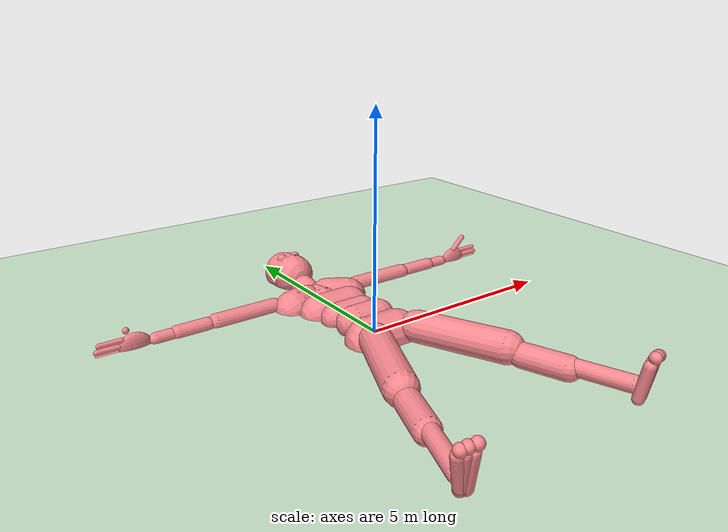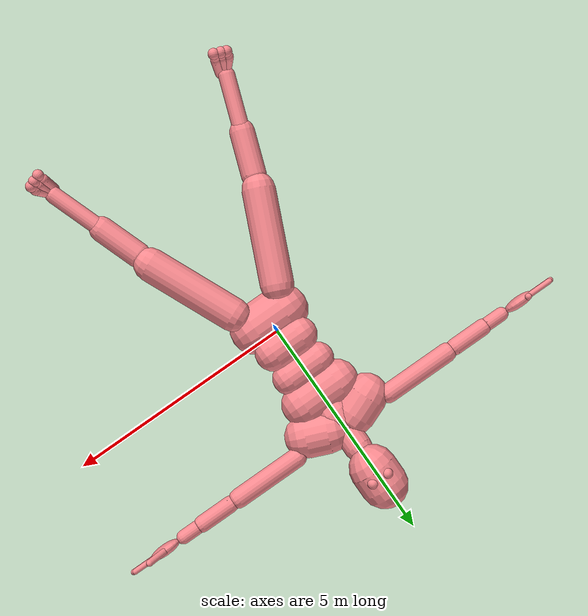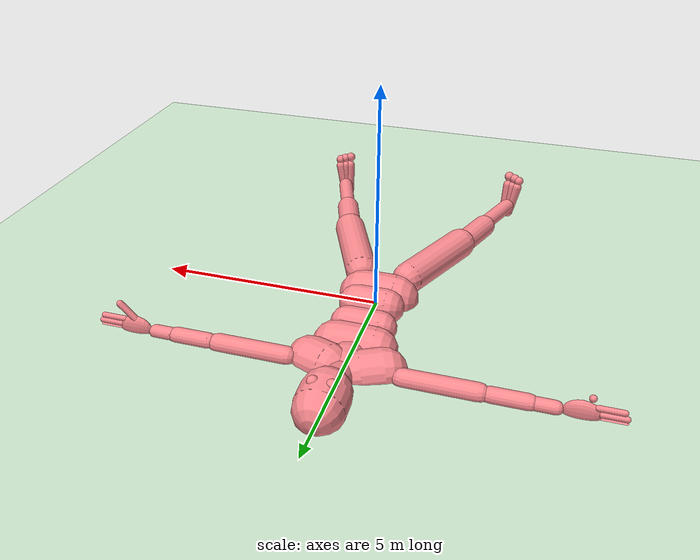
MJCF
<mujoco model="humanoid">
  <include file="./common/materials.xml" />
  <compiler angle="degree" inertiafromgeom="true" coordinate="local" />
  <statistic extent="3" center="0 0 1" />
  <size nuser_body="3" />
  <option timestep="0.00222222222" />

  <default class="main">
    <joint limited="true" solimplimit="0 0.99 0.01" />
    <geom contype="7" conaffinity="7" condim="1" margin="0.001" material="self" rgba="0.98 0.54 0.56 1" />
  </default>

  <worldbody>
    <geom condim="3" friction="1. .1 .1" material="grid_new" name="floor" pos="0.0 0.0 0.0" rgba=".8 .9 .8 1" size="704.3553448438121 704.3553448438121 1.4087106896876243" type="plane" />
    <light name="tracking_light" pos="0 0 7" dir="0 0 -1" mode="trackcom" />
    <camera name="back" pos="0 3 2.4" xyaxes="-1 0 0 0 -1 2" mode="trackcom" />
    <camera name="side" pos="-3 0 2.4" xyaxes="0 -1 0 1 0 2" mode="trackcom" />
    <body name="root" pos="0.0 0.0 0.0" euler="0 0 0">
      <joint armature="0.0" limited="false" name="root" pos="0.0 -0.0 0.0" stiffness="0" type="free" />

      <geom type="capsule" name="root_geom" size="0.5416935339494245 0.3611290226329497" pos="0.0 -0.3009408521941248 0.0" quat="1 0 -1 0" mass="8.8725" />
      <body name="lhipjoint" pos="0.0 0.0 0.0">
        <geom type="capsule" name="lhipjoint" size="0.04815053635105997 0.13241397496541488" pos="0.3069596692380072 -0.2768655840185948 0.1504704260970624" quat="0.5708 -0.566602 -0.594264 0" />
        <body name="lfemur" pos="0.6139193384760144 -0.5537311680371896 0.3009408521941248" quat="1 0 0 0.17365">
          <joint name="lfemur_z" axis="0 0 1" range="-60 70" type="hinge" pos="0.0 0.0 0.0" />
          <joint name="lfemur_y" axis="0 1 0" range="-70 70" type="hinge" pos="0.0 0.0 0.0" />
          <joint name="lfemur_x" axis="1 0 0" range="-160 20" type="hinge" pos="0.0 0.0 0.0" />
          <geom type="capsule" name="lfemur" size="0.3611290226329497 1.0231988974600243" pos="-0.060188170438824955 -1.2186479433260204 0.0" quat="0.7 -0.7 -0.1228 -0.07" mass="10.8525" />
          <body name="ltibia" pos="0.0 -2.437289867834997 0.0">
            <joint name="ltibia_x" axis="1 0 0" range="1   170" type="hinge" pos="0.0 0.0 0.0" />
            <geom type="capsule" name="ltibia" size="0.18056451131647486 1.0988036658750497" pos="0.0 -1.2208929620833886 0.0" quat="0.7 -0.7 -0.1228 -0.1228" mass="3.4274999999999998" />
            <geom type="capsule" name="lcalf" size="0.27084676697471227 0.48150536351059964" pos="0.0 -0.6018817043882496 -0.060188170438824955" quat="0.7 -0.7 -0.1228 -0.1228" />
            <body name="lfoot" pos="0.0 -2.4417919429838215 0.0" quat="0.707107 -0.707107 0 0">

              <joint name="lfoot_z" axis="0 0 1" range="-70 20" type="hinge" pos="0.0 0.0 0.0" />
              <joint name="lfoot_y" pos="0.0 0.0 0.0" axis="0 -1 0" range="-45 45" />
              <joint name="lfoot_x" axis="1 0 0" range="-45    90" type="hinge" pos="0.0 0.0 0.0" />
              <geom type="capsule" name="lfoot0" size="0.12037634087764991 0.3611290226329497" pos="-0.12037634087764991 -0.1384327920092974 -0.060188170438824955" euler="100 -2 0" mass="0.9974999999999999" />
              <geom type="capsule" name="lfoot1" size="0.12037634087764991 0.3611290226329497" pos="0.0 -0.1384327920092974 -0.060188170438824955" euler="100 0 0" />
              <geom type="capsule" name="lfoot2" size="0.12037634087764991 0.3611290226329497" pos="0.060188170438824955 -0.1384327920092974 -0.060188170438824955" euler="100 10 0" />
              <body name="ltoes" pos="0.0 -0.6402336065918688 -0.13708216946465016">

                <geom name="ltoes0" type="sphere" size="0.12037634087764991" pos="-0.1504704260970624 -0.060188170438824955 -0.060188170438824955" />
                <geom name="ltoes1" type="sphere" size="0.12037634087764991" pos="0.0 -0.030094085219412477 -0.060188170438824955" />
                <geom name="ltoes2" type="sphere" size="0.12037634087764991" pos="0.12037634087764991 0.006018817043882496 -0.060188170438824955" />

              </body>
            </body>
          </body>
        </body>
      </body>
      <body name="rhipjoint" pos="0.0 0.0 0.0">
        <geom type="capsule" name="rhipjoint" size="0.04815053635105997 0.13241397496541488" pos="-0.3069596692380072 -0.2768655840185948 0.1504704260970624" quat="0.574856 -0.547594 0.608014 0" />
        <body name="rfemur" pos="-0.6139193384760144 -0.5537311680371896 0.3009408521941248" quat="1 0 0 -0.17365">
          <joint name="rfemur_z" axis="0 0 1" range="-70 60" type="hinge" pos="0.0 0.0 0.0" />
          <joint name="rfemur_y" axis="0 1 0" range="-70 70" type="hinge" pos="0.0 0.0 0.0" />
          <joint name="rfemur_x" axis="1 0 0" range="-160 20" type="hinge" pos="0.0 0.0 0.0" />
          <geom type="capsule" name="rfemur" size="0.3611290226329497 1.0231988974600243" pos="0.060188170438824955 -1.2186479433260204 0.0" quat="0.7 -0.7 0.1228 0.07" mass="10.8525" />
          <body name="rtibia" pos="0.0 -2.437289867834997 0.0">
            <joint name="rtibia_x" axis="1 0 0" range="1   170" type="hinge" pos="0.0 0.0 0.0" />
            <geom type="capsule" name="rtibia" size="0.18056451131647486 1.0988036658750497" pos="0.0 -1.2208929620833886 0.0" quat="0.7 -0.7 0.1228 0.1228" mass="3.4274999999999998" />
            <geom type="capsule" name="rcalf" size="0.27084676697471227 0.48150536351059964" pos="0.0 -0.6018817043882496 -0.060188170438824955" quat="0.7 -0.7 -0.1228 -0.1228" />
            <body name="rfoot" pos="0.0 -2.4417919429838215 0.0" quat="0.707107 -0.707107 0 0">

              <joint name="rfoot_z" axis="0 0 1" range="-20 70" type="hinge" pos="0.0 0.0 0.0" />
              <joint name="rfoot_y" pos="0.0 0.0 0.0" axis="0 -1 0" range="-45 45" />
              <joint name="rfoot_x" axis="1 0 0" range="-45    90" type="hinge" pos="0.0 0.0 0.0" />
              <geom type="capsule" name="rfoot0" size="0.12037634087764991 0.3611290226329497" pos="0.12037634087764991 -0.1384327920092974 -0.060188170438824955" euler="100 2 0" mass="0.9974999999999999" />
              <geom type="capsule" name="rfoot1" size="0.12037634087764991 0.3611290226329497" pos="0.0 -0.1384327920092974 -0.060188170438824955" euler="100 0 0" />
              <geom type="capsule" name="rfoot2" size="0.12037634087764991 0.3611290226329497" pos="-0.060188170438824955 -0.1384327920092974 -0.060188170438824955" euler="100 -10 0" />
              <body name="rtoes" pos="0.0 -0.6402336065918688 -0.13708216946465016">

                <geom name="rtoes0" type="sphere" size="0.12037634087764991" pos="0.1504704260970624 -0.060188170438824955 -0.060188170438824955" />
                <geom name="rtoes1" type="sphere" size="0.12037634087764991" pos="0.0 -0.030094085219412477 -0.060188170438824955" />
                <geom name="rtoes2" type="sphere" size="0.12037634087764991" pos="-0.12037634087764991 0.006018817043882496 -0.060188170438824955" />

              </body>
            </body>
          </body>
        </body>
      </body>
      <body name="lowerback" pos="0.0 0.0 0.0">

        <geom type="capsule" name="lowerback" size="0.3912231078523622 0.33103493741353723" pos="0.0 0.33705375445741975 0.18056451131647486" quat="1 0 1 0" />
        <body name="upperback" pos="0.0 0.6018817043882496 -0.060188170438824955">
          <joint name="upperback_z" axis="0 0 1" range="-30 30" type="hinge" pos="0.0 0.0 0.0" />
          <joint name="upperback_y" axis="0 1 0" range="-30 30" type="hinge" pos="0.0 0.0 0.0" />
          <joint name="upperback_x" axis="1 0 0" range="-20 45" type="hinge" pos="0.0 0.0 0.0" />
          <geom type="capsule" name="upperback" size="0.3611290226329497 0.3611290226329497" pos="0.0 0.3611290226329497 0.12037634087764991" quat="1 0 1 0" mass="3.9225" />
          <body name="thorax" pos="0.003084812261867008 0.6834968635032961 0.0056385542018670435">
            <geom type="capsule" name="thorax" size="0.48150536351059964 0.42131719307177473" pos="0.0 0.3009408521941248 0.0" quat="1 0 1 0" mass="11.617500000000001" />
            <body name="lowerneck" pos="0.0 0.6858141080651909 0.028170290727676312">
              <joint name="lowerneck_z" axis="0 0 1" range="-30 30" type="hinge" pos="0.0 0.0 0.0" />
              <joint name="lowerneck_y" axis="0 1 0" range="-30 30" type="hinge" pos="0.0 0.0 0.0" />
              <joint name="lowerneck_x" axis="1 0 0" range="-20 45" type="hinge" pos="0.0 0.0 0.0" />
              <geom type="capsule" name="lowerneck" size="0.48150536351059964 0.12037634087764991" pos="0.0 0.24075268175529982 -0.12037634087764991" quat="1 1 0 0" mass="5.1075" />
              <body name="upperneck" pos="0.0 0.5416935339494245 0.060188170438824955">
                <geom type="capsule" name="upperneck" size="0.3009408521941248 0.18056451131647486" pos="0.0 0.3009408521941248 0.0" quat=".8 1 0 0" />
                <body name="head" pos="0.0 0.5416935339494245 0.0">
                  <camera name="egocentric" pos="0 0 0" xyaxes="-1 0 0 0 1 0" fovy="80" />
                  <geom type="capsule" name="head" size="0.5115994487300122 0.21065859653588737" pos="0.0 0.6620698748270745 0.18056451131647486" quat="1 .9 0 0" />
                  <geom name="leye" type="sphere" size="0.12037634087764991" pos="0.18056451131647486 0.6620698748270745 0.6018817043882496" />
                  <geom name="reye" type="sphere" size="0.12037634087764991" pos="-0.18056451131647486 0.6620698748270745 0.6018817043882496" />
                </body>
              </body>
            </body>
            <body name="lclavicle" pos="0.0 0.6858141080651909 0.028170290727676312">
              <joint name="lclavicle_z" axis="0 0 1" range="0 20" type="hinge" pos="0.0 0.0 0.0" />
              <joint name="lclavicle_y" axis="0 1 0" range="-20 10" type="hinge" pos="0.0 0.0 0.0" />
              <geom type="capsule" name="lclavicle" size="0.48150536351059964 0.24075268175529982" pos="0.5416935339494245 0.3009408521941248 -0.060188170438824955" quat="1 0 -1 -.4" mass="3.9225" />
              <body name="lhumerus" pos="1.1014435190304965 0.4574300953350696 0.060188170438824955" quat="0.18 0.68 -0.68 0.18">
                <joint name="lhumerus_z" axis="0 0 1" range="-90 90" type="hinge" pos="0.0 0.0 0.0" />
                <joint name="lhumerus_y" axis="0 1 0" range="-90 90" type="hinge" pos="0.0 0.0 0.0" />
                <joint name="lhumerus_x" axis="1 0 0" range="-60 90" type="hinge" pos="0.0 0.0 0.0" />
                <geom type="capsule" name="lhumerus" size="0.21065859653588737 0.7463333134414294" pos="0.0 -0.8305967520557844 0.0" quat="0.612 -0.612 0.35 0.35" mass="1.9725000000000001" />
                <body name="lradius" pos="0.0 -1.6672123211554513 0.0">
                  <joint name="lradius_x" axis="1 0 0" range="-10 170" type="hinge" pos="0.0 0.0 0.0" />
                  <geom type="capsule" name="lradius" size="0.18056451131647486 0.3611290226329497" pos="0.0 -0.48150536351059964 0.0" quat="0.612 -0.612 0.35 0.35" mass="1.125" />
                  <body name="lwrist" pos="0.0 -1.0231988974600243 0.0" quat="-0.5 0 0.866 0">
                    <geom type="capsule" name="lwrist" size="0.1504704260970624 0.18056451131647486" pos="0.0 -0.12037634087764991 0.0" quat="0 0 -1 -1" mass="0.4425" />
                    <body name="lhand" pos="0.0 -0.48150536351059964 0.0">
                      <geom name="lhand" type="ellipsoid" size="0.28890321810635977 0.12037634087764991 0.3611290226329497" pos="0.0 -0.28288440106247725 0.0" quat="0 0 -1 -1" />
                      <body name="lfingers" pos="0.0 -0.48150536351059964 0.0">
                        <geom type="capsule" name="lfinger0" size="0.060188170438824955 0.24075268175529982" pos="-0.18056451131647486 -0.3009408521941248 0.0" quat="1 -1 0 0" />
                        <geom type="capsule" name="lfinger1" size="0.060188170438824955 0.24075268175529982" pos="-0.04815053635105997 -0.3611290226329497 0.0" quat="1 -1 0 0" />
                        <geom type="capsule" name="lfinger2" size="0.05416935339494245 0.24075268175529982" pos="0.08426343861435494 -0.3611290226329497 0.0" quat="1 -1 0 0" />
                        <geom type="capsule" name="lfinger3" size="0.04815053635105997 0.24075268175529982" pos="0.19260214540423987 -0.3009408521941248 0.0" quat="1 -1 0 0" />
                      </body>
                      <body name="lthumb" pos="-0.12037634087764991 -0.18056451131647486 0.0" quat="0.92388 0 0 -0.382683">
                        <geom type="capsule" name="lthumb" size="0.07222580452658994 0.24075268175529982" pos="0.0 -0.3611290226329497 0.0" quat="0 0 -1 -1" />
                      </body>
                    </body>
                  </body>
                </body>
              </body>
            </body>
            <body name="rclavicle" pos="0.0 0.6858141080651909 0.028170290727676312">
              <joint name="rclavicle_z" axis="0 0 1" range="-20 0" type="hinge" pos="0.0 0.0 0.0" />
              <joint name="rclavicle_y" axis="0 1 0" range="-10 20" type="hinge" pos="0.0 0.0 0.0" />
              <geom type="capsule" name="rclavicle" size="0.48150536351059964 0.24075268175529982" pos="-0.5416935339494245 0.3009408521941248 -0.060188170438824955" quat="1 0 -1 .4" mass="3.9225" />
              <body name="rhumerus" pos="-1.1014435190304965 0.4574300953350696 0.060188170438824955" quat="0.18 0.68 0.68 -0.18">
                <joint name="rhumerus_z" axis="0 0 1" range="-90 90" type="hinge" pos="0.0 0.0 0.0" />
                <joint name="rhumerus_y" axis="0 1 0" range="-90 90" type="hinge" pos="0.0 0.0 0.0" />
                <joint name="rhumerus_x" axis="1 0 0" range="-60 90" type="hinge" pos="0.0 0.0 0.0" />
                <geom type="capsule" name="rhumerus" size="0.21065859653588737 0.7463333134414294" pos="0.0 -0.8305967520557844 0.0" quat="0.61 -0.61 -0.35 -0.35" mass="1.9725000000000001" />
                <body name="rradius" pos="0.0 -1.6672123211554513 0.0">
                  <joint name="rradius_x" axis="1 0 0" range="-10 170" type="hinge" pos="0.0 0.0 0.0" />
                  <geom type="capsule" name="rradius" size="0.18056451131647486 0.3611290226329497" pos="0.0 -0.48150536351059964 0.0" quat="0.612 -0.612 -0.35 -0.35" mass="1.125" />
                  <body name="rwrist" pos="0.0 -1.0231988974600243 0.0" quat="-0.5 0 -0.866 0">
                    <geom type="capsule" name="rwrist" size="0.1504704260970624 0.18056451131647486" pos="0.0 -0.12037634087764991 0.0" quat="0 0 1 1" mass="0.4425" />
                    <body name="rhand" pos="0.0 -0.48150536351059964 0.0">
                      <geom name="rhand" type="ellipsoid" size="0.28890321810635977 0.12037634087764991 0.3611290226329497" pos="0.0 -0.28288440106247725 0.0" quat="0 0 1 1" />
                      <body name="rfingers" pos="0.0 -0.48150536351059964 0.0">
                        <geom type="capsule" name="rfinger0" size="0.060188170438824955 0.24075268175529982" pos="0.18056451131647486 -0.3009408521941248 0.0" quat="1 -1  0 0" />
                        <geom type="capsule" name="rfinger1" size="0.060188170438824955 0.24075268175529982" pos="0.04815053635105997 -0.3611290226329497 0.0" quat="1 -1  0 0" />
                        <geom type="capsule" name="rfinger2" size="0.05416935339494245 0.24075268175529982" pos="-0.08426343861435494 -0.3611290226329497 0.0" quat="1 -1  0 0" />
                        <geom type="capsule" name="rfinger3" size="0.04815053635105997 0.24075268175529982" pos="-0.19260214540423987 -0.3009408521941248 0.0" quat="1 -1  0 0" />
                      </body>
                      <body name="rthumb" pos="0.12037634087764991 -0.18056451131647486 0.0" quat="0.92388 0 0 0.382683">
                        <geom name="rthumb" size="0.07222580452658994 0.24075268175529982" pos="0.0 -0.3611290226329497 0.0" quat="0 0 1 1" />
                      </body>
                    </body>
                  </body>
                </body>
              </body>
            </body>
          </body>
        </body>
      </body>
    </body>
  </worldbody>

  <contact>
    <exclude body1="lclavicle" body2="rclavicle" />
    <exclude body1="lowerneck" body2="lclavicle" />
    <exclude body1="lowerneck" body2="rclavicle" />
    <exclude body1="upperneck" body2="lclavicle" />
    <exclude body1="upperneck" body2="rclavicle" />
  </contact>

  <actuator>
    <general name="lfemur_z" joint="lfemur_z" />
    <general name="lfemur_y" joint="lfemur_y" />
    <general name="lfemur_x" joint="lfemur_x" />
    <general name="ltibia_x" joint="ltibia_x" />
    <general name="lfoot_z" joint="lfoot_z" />
    <general name="lfoot_y" joint="lfoot_y" />
    <general name="lfoot_x" joint="lfoot_x" />
    <general name="rfemur_z" joint="rfemur_z" />
    <general name="rfemur_y" joint="rfemur_y" />
    <general name="rfemur_x" joint="rfemur_x" />
    <general name="rtibia_x" joint="rtibia_x" />
    <general name="rfoot_z" joint="rfoot_z" />
    <general name="rfoot_y" joint="rfoot_y" />
    <general name="rfoot_x" joint="rfoot_x" />
    <general name="upperback_z" joint="upperback_z" />
    <general name="upperback_y" joint="upperback_y" />
    <general name="upperback_x" joint="upperback_x" />
    <general name="lowerneck_z" joint="lowerneck_z" />
    <general name="lowerneck_y" joint="lowerneck_y" />
    <general name="lowerneck_x" joint="lowerneck_x" />
    <general name="lclavicle_z" joint="lclavicle_z" />
    <general name="lclavicle_y" joint="lclavicle_y" />
    <general name="lhumerus_z" joint="lhumerus_z" />
    <general name="lhumerus_y" joint="lhumerus_y" />
    <general name="lhumerus_x" joint="lhumerus_x" />
    <general name="lradius_x" joint="lradius_x" />
    <general name="rclavicle_z" joint="rclavicle_z" />
    <general name="rclavicle_y" joint="rclavicle_y" />
    <general name="rhumerus_z" joint="rhumerus_z" />
    <general name="rhumerus_y" joint="rhumerus_y" />
    <general name="rhumerus_x" joint="rhumerus_x" />
    <general name="rradius_x" joint="rradius_x" />
  </actuator>
</mujoco>

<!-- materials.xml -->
<!--
Common textures, colors and materials to be used throughout this suite. Some
materials such as xxx_highlight are activated on occurence of certain events,
for example receiving a positive reward.
-->
<mujoco>
  <asset>
    <texture name="grid" type="2d" builtin="checker" rgb1=".1 .2 .3" rgb2=".2 .3 .4" width="300" height="300" mark="edge" markrgb=".2 .3 .4"/>
    <material name="grid" texture="grid" texrepeat="1 1" texuniform="true" reflectance=".2"/>
    <texture builtin="checker" height="100" name="texplane" rgb1="0 0 0" rgb2=".8 .8 .8" type="2d" width="100"/>
    <texture name="grass" file="./common/grass.png" type="2d"/>

    <texture name="grid_new" type="2d" builtin="checker" rgb1=".1 .3 .2" rgb2=".2 .4 .3" width="1000" height="1000" mark="none" markrgb=".8 .6 .4"/>
    <material name="grid_new" texture="grid_new" texrepeat="0.2 0.2" texuniform="true" reflectance=".2"/>
    <material name="MatPlane" reflectance="0.5" shininess="1" specular="1" texrepeat="60 60" texture="texplane"/>
    <material name="GrassPlane" reflectance="0.0" shininess="1" specular="1" texrepeat="400 400" texture="grass"/>
    <material name="self" rgba=".7 .5 .3 1"/>
    <material name="self_default" rgba=".7 .5 .3 1"/>
    <material name="self_highlight" rgba="0 .5 .3 1"/>
    <material name="effector" rgba=".7 .4 .2 1"/>
    <material name="effector_default" rgba=".7 .4 .2 1"/>
    <material name="effector_highlight" rgba="0 .5 .3 1"/>
    <material name="decoration" rgba=".3 .5 .7 1"/>
    <material name="eye" rgba="0 .2 1 1"/>
    <material name="target" rgba=".6 .3 .3 1"/>
    <material name="target_default" rgba=".6 .3 .3 1"/>
    <material name="target_highlight" rgba=".6 .3 .3 .4"/>
    <material name="expert" rgba=".6 .3 .3 .4"/>
  </asset>
</mujoco>
